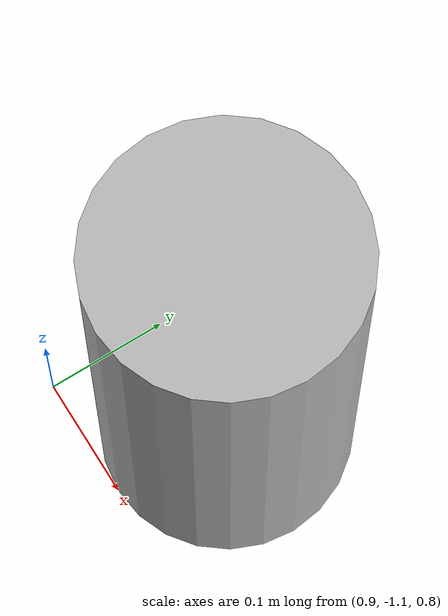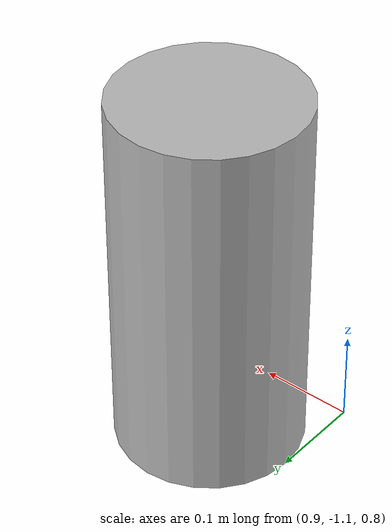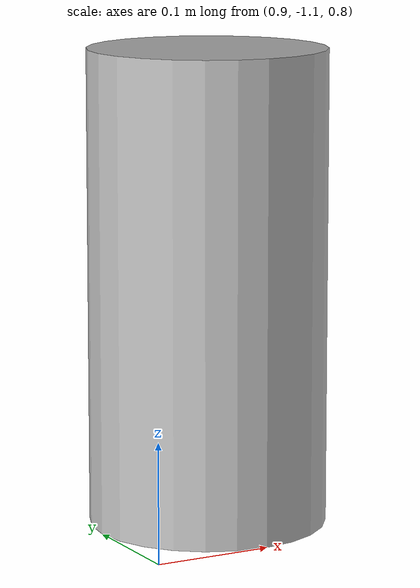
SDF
<?xml version='1.0'?>
<sdf version='1.6'>
	<model name='cyl_ob_model'>
		<link name='base_link'>

			<pose frame=''>1 -1 1 0 -0 0</pose>

			<inertial>
				<mass>1.0</mass>
				<inertia>
					<ixx>1</ixx>
					<ixy>0</ixy>
					<ixz>0</ixz>
					<iyy>1</iyy>
					<iyz>0</iyz>
					<izz>1</izz>
				</inertia>
			</inertial>

			<self_collide>0</self_collide>

			<kinematic>0</kinematic>

			<visual name='visual'>
				<geometry>
					<cylinder>
						<radius>0.1</radius>
						<length>0.4</length>
					</cylinder>
				</geometry>
				<material>
					<shader type='pixel'/>
				</material>
				<pose frame=''>0 0 0 0 -0 0</pose>
				<cast_shadows>1</cast_shadows>
				<transparency>0</transparency>
			</visual>

			<collision name='collision'>
				<laser_retro>0</laser_retro>
				<max_contacts>10</max_contacts>
				<pose frame=''>0 0 0 0 -0 0</pose>
				<geometry>
					<cylinder>
						<radius>0.1</radius>
						<length>0.4</length>
					</cylinder>
				</geometry>
				<surface>
					<friction>
						<ode>
							<mu>1</mu>
              				<mu2>1</mu2>
              				<fdir1>0 0 0</fdir1>
              				<slip1>0</slip1>
              				<slip2>0</slip2>
              			</ode>
              			<torsional>
              				<coefficient>1</coefficient>
              				<patch_radius>0</patch_radius>
              				<surface_radius>0</surface_radius>
              				<use_patch_radius>1</use_patch_radius>
              				<ode>
                				<slip>0</slip>
              				</ode>
              			</torsional>
              		</friction>
              		<bounce>
              			<restitution_coefficient>0</restitution_coefficient>
            			<threshold>1e+06</threshold>
            		</bounce>
            		<contact>
            			<collide_without_contact>0</collide_without_contact>
            			<collide_without_contact_bitmask>1</collide_without_contact_bitmask>
            			<collide_bitmask>1</collide_bitmask>
            			<ode>
              				<soft_cfm>0</soft_cfm>
              				<soft_erp>0.2</soft_erp>
              				<kp>1e+13</kp>
              				<kd>1</kd>
              				<max_vel>0.01</max_vel>
              				<min_depth>0</min_depth>
            			</ode>
            			<bullet>
              				<split_impulse>1</split_impulse>
              				<split_impulse_penetration_threshold>-0.01</split_impulse_penetration_threshold>
              				<soft_cfm>0</soft_cfm>
              				<soft_erp>0.2</soft_erp>
              				<kp>1e+13</kp>
              				<kd>1</kd>
            			</bullet>
          			</contact>
          		</surface>
          	</collision>
        </link>
        <static>0</static>
        <allow_auto_disable>1</allow_auto_disable>
    </model>
</sdf>
